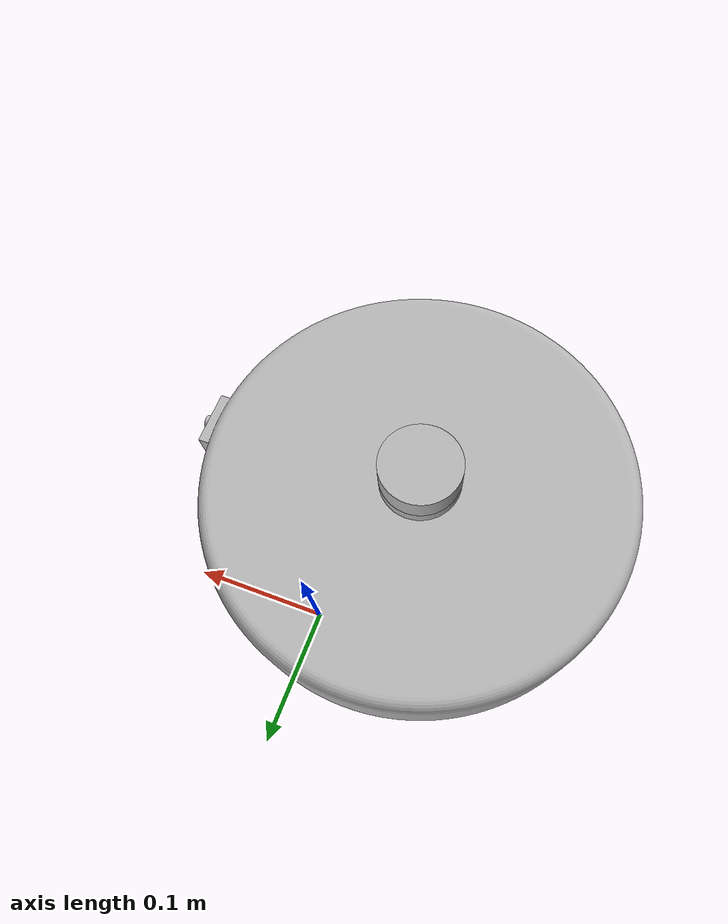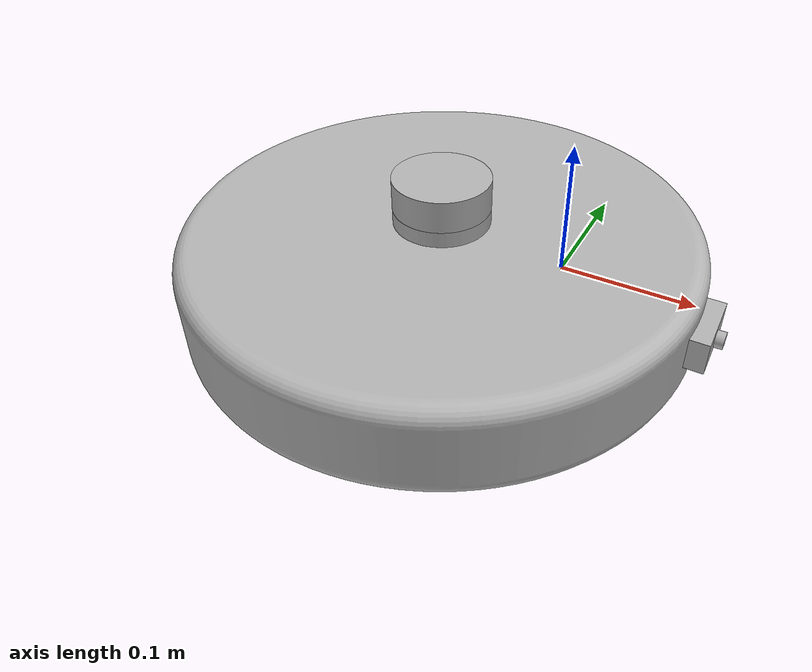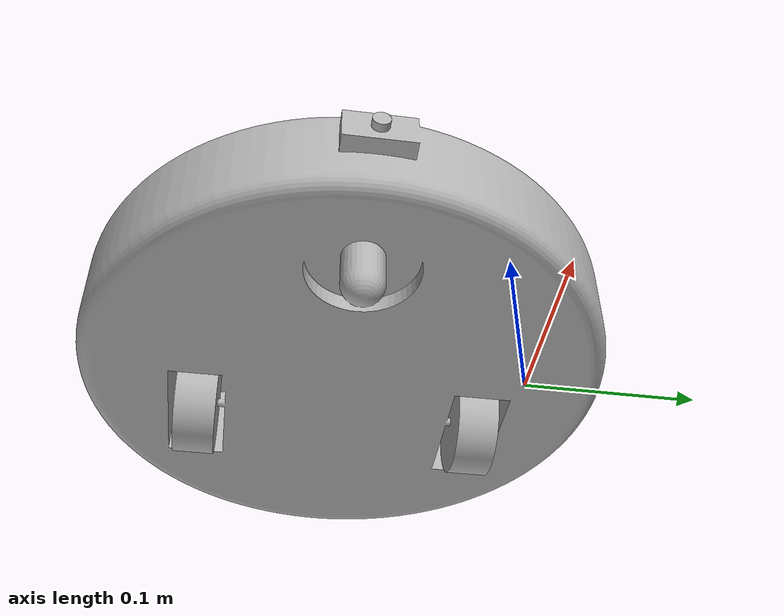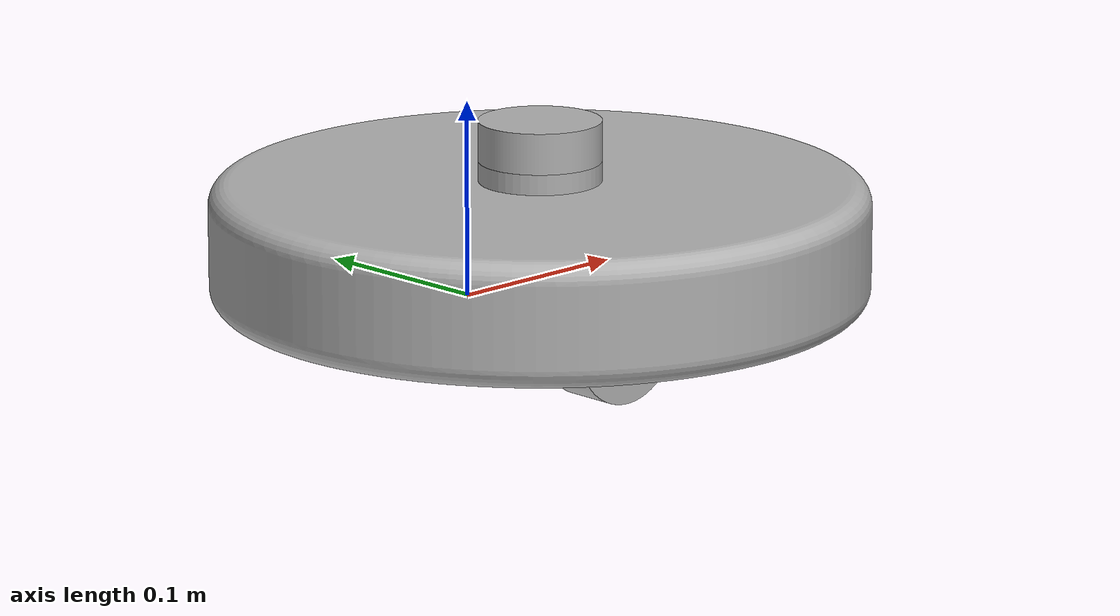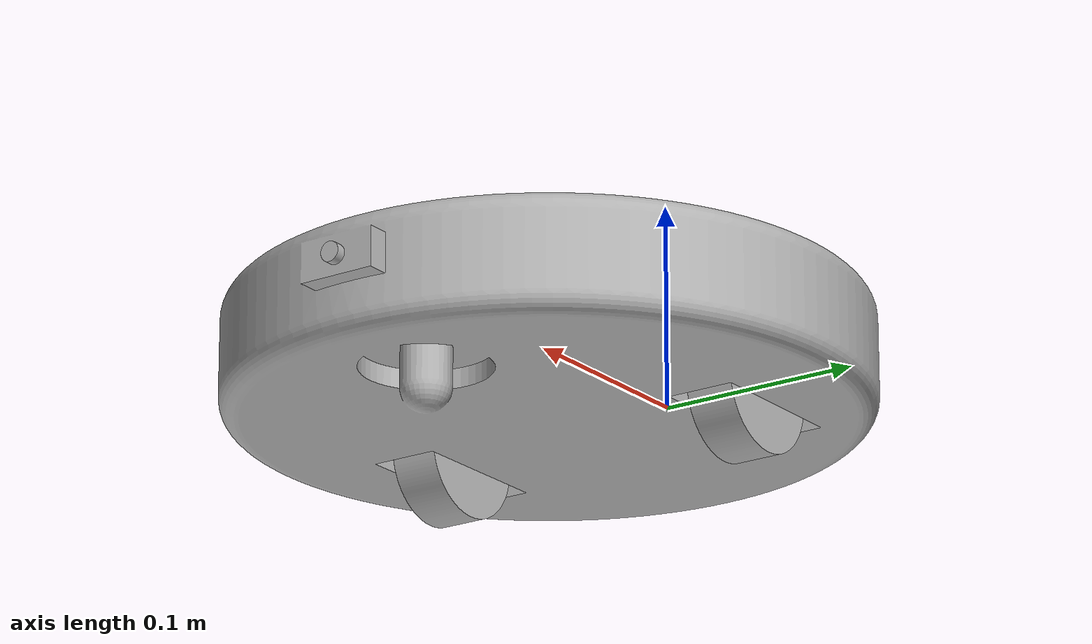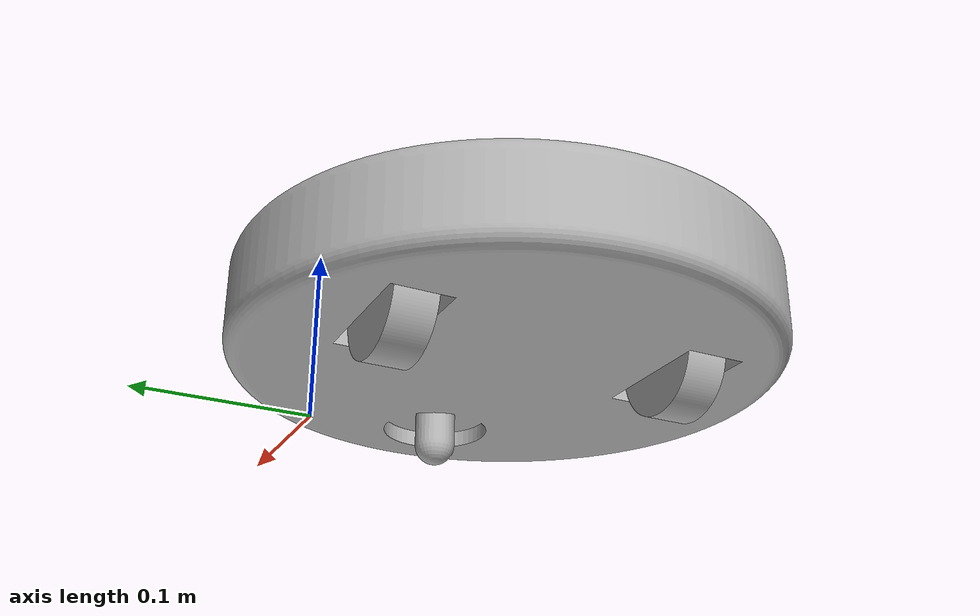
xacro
<?xml version="1.0" ?>
<robot name="cleaning_robot" xmlns:xacro="http://www.ros.org/wiki/xacro">

<xacro:include filename="$(find cleaning_robot_description)/urdf/materials.xacro" />
<xacro:include filename="$(find cleaning_robot_description)/urdf/cleaning_robot.trans" />
<xacro:include filename="$(find cleaning_robot_description)/urdf/cleaning_robot.gazebo" />
<link name="base_link">
  <inertial>
    <origin xyz="-0.04437838792509645 -0.1000005943178517 0.05601957260904838" rpy="0 0 0"/>
    <mass value="4.791754555008142"/>
    <inertia ixx="0.031334" iyy="0.033013" izz="0.061423" ixy="0.0" iyz="0.0" ixz="2.2e-05"/>
  </inertial>
  <visual>
    <origin xyz="0 0 0" rpy="0 0 0"/>
    <geometry>
      <mesh filename="package://cleaning_robot_description/meshes/base_link.stl" scale="0.001 0.001 0.001"/>
    </geometry>
    <material name="silver"/>
  </visual>
  <collision>
    <origin xyz="0 0 0" rpy="0 0 0"/>
    <geometry>
      <mesh filename="package://cleaning_robot_description/meshes/base_link.stl" scale="0.001 0.001 0.001"/>
    </geometry>
  </collision>
</link>

<link name="right_wheel_1">
  <inertial>
    <origin xyz="4.225560589210531e-07 -0.0124999999999999 4.412303293496733e-07" rpy="0 0 0"/>
    <mass value="0.07715064333823558"/>
    <inertia ixx="2.4e-05" iyy="4.1e-05" izz="2.4e-05" ixy="-0.0" iyz="0.0" ixz="0.0"/>
  </inertial>
  <visual>
    <origin xyz="0.086734 0.175 -0.035405" rpy="0 0 0"/>
    <geometry>
      <mesh filename="package://cleaning_robot_description/meshes/right_wheel_1.stl" scale="0.001 0.001 0.001"/>
    </geometry>
    <material name="silver"/>
  </visual>
  <collision>
    <origin xyz="0.086734 0.175 -0.035405" rpy="0 0 0"/>
    <geometry>
      <mesh filename="package://cleaning_robot_description/meshes/right_wheel_1.stl" scale="0.001 0.001 0.001"/>
    </geometry>
  </collision>
</link>

<link name="left_wheel_1">
  <inertial>
    <origin xyz="4.2255605858798617e-07 0.012499999999999041 4.412303297104958e-07" rpy="0 0 0"/>
    <mass value="0.07715064333823558"/>
    <inertia ixx="2.4e-05" iyy="4.1e-05" izz="2.4e-05" ixy="-0.0" iyz="0.0" ixz="0.0"/>
  </inertial>
  <visual>
    <origin xyz="0.086734 0.025 -0.035405" rpy="0 0 0"/>
    <geometry>
      <mesh filename="package://cleaning_robot_description/meshes/left_wheel_1.stl" scale="0.001 0.001 0.001"/>
    </geometry>
    <material name="silver"/>
  </visual>
  <collision>
    <origin xyz="0.086734 0.025 -0.035405" rpy="0 0 0"/>
    <geometry>
      <mesh filename="package://cleaning_robot_description/meshes/left_wheel_1.stl" scale="0.001 0.001 0.001"/>
    </geometry>
  </collision>
</link>

<link name="Camera_1">
  <inertial>
    <origin xyz="0.0025004225560568555 -3.785761643060326e-07 1.1586509461591898e-07" rpy="0 0 0"/>
    <mass value="0.0030826877913351157"/>
    <inertia ixx="0.0" iyy="0.0" izz="0.0" ixy="-0.0" iyz="0.0" ixz="-0.0"/>
  </inertial>
  <visual>
    <origin xyz="-0.123266 0.100296 -0.059968" rpy="0 0 0"/>
    <geometry>
      <mesh filename="package://cleaning_robot_description/meshes/Camera_1.stl" scale="0.001 0.001 0.001"/>
    </geometry>
    <material name="silver"/>
  </visual>
  <collision>
    <origin xyz="-0.123266 0.100296 -0.059968" rpy="0 0 0"/>
    <geometry>
      <mesh filename="package://cleaning_robot_description/meshes/Camera_1.stl" scale="0.001 0.001 0.001"/>
    </geometry>
  </collision>
</link>

<link name="lidar_1">
  <inertial>
    <origin xyz="4.2255606019087066e-07 -1.3877787807814457e-16 0.01000044123033178" rpy="0 0 0"/>
    <mass value="0.059941587830493234"/>
    <inertia ixx="1.5e-05" iyy="1.5e-05" izz="2.7e-05" ixy="0.0" iyz="-0.0" ixz="0.0"/>
  </inertial>
  <visual>
    <origin xyz="0.046734 0.1 -0.095405" rpy="0 0 0"/>
    <geometry>
      <mesh filename="package://cleaning_robot_description/meshes/lidar_1.stl" scale="0.001 0.001 0.001"/>
    </geometry>
    <material name="silver"/>
  </visual>
  <collision>
    <origin xyz="0.046734 0.1 -0.095405" rpy="0 0 0"/>
    <geometry>
      <mesh filename="package://cleaning_robot_description/meshes/lidar_1.stl" scale="0.001 0.001 0.001"/>
    </geometry>
  </collision>
</link>

<joint name="Revolute_1" type="continuous">
  <origin xyz="-0.086734 -0.175 0.035405" rpy="0 0 0"/>
  <parent link="base_link"/>
  <child link="right_wheel_1"/>
  <axis xyz="0.0 1.0 0.0"/>
</joint>

<joint name="Revolute_2" type="continuous">
  <origin xyz="-0.086734 -0.025 0.035405" rpy="0 0 0"/>
  <parent link="base_link"/>
  <child link="left_wheel_1"/>
  <axis xyz="0.0 1.0 0.0"/>
</joint>

<joint name="Rigid 7" type="fixed">
  <origin xyz="0.123266 -0.100296 0.059968" rpy="0 0 0"/>
  <parent link="base_link"/>
  <child link="Camera_1"/>
</joint>

<joint name="Rigid 8" type="fixed">
  <origin xyz="-0.046734 -0.1 0.095405" rpy="0 0 0"/>
  <parent link="base_link"/>
  <child link="lidar_1"/>
</joint>

</robot>

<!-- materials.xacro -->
<robot name="cleaning_robot" xmlns:xacro="http://www.ros.org/wiki/xacro" >

<material name="silver">
  <color rgba="0.700 0.700 0.700 1.000"/>
</material>

</robot>

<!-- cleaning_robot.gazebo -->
<robot name="cleaning_robot" xmlns:xacro="http://www.ros.org/wiki/xacro" >

<xacro:property name="body_color" value="Gazebo/Silver" />

<gazebo>
  <plugin name="control" filename="libgazebo_ros_control.so"/>
</gazebo>
<gazebo reference="base_link">
  <material>${body_color}</material>
  <mu1>0.2</mu1>
  <mu2>0.2</mu2>
  <selfCollide>true</selfCollide>
  <gravity>true</gravity>
</gazebo>

<gazebo reference="right_wheel_1">
  <material>${body_color}</material>
  <mu1>0.2</mu1>
  <mu2>0.2</mu2>
  <selfCollide>true</selfCollide>
</gazebo>

<gazebo reference="left_wheel_1">
  <material>${body_color}</material>
  <mu1>0.2</mu1>
  <mu2>0.2</mu2>
  <selfCollide>true</selfCollide>
</gazebo>

<gazebo reference="Camera_1">
  <material>${body_color}</material>
  <mu1>0.2</mu1>
  <mu2>0.2</mu2>
  <selfCollide>true</selfCollide>
</gazebo>

<gazebo reference="lidar_1">
  <material>${body_color}</material>
  <mu1>0.2</mu1>
  <mu2>0.2</mu2>
  <selfCollide>true</selfCollide>
</gazebo>
<gazebo>
  <plugin name="differential_drive_controller" filename="libgazebo_ros_diff_drive.so">

    <!-- Plugin update rate in Hz -->
    <updateRate>100</updateRate>

    <!-- Name of left joint, defaults to `left_joint` -->
    <leftJoint>Revolute_1</leftJoint>

    <!-- Name of right joint, defaults to `right_joint` -->
    <rightJoint>Revolute_2</rightJoint>

    <!-- The distance from the center of one wheel to the other, in meters, defaults to 0.34 m -->
    <wheelSeparation>0.150</wheelSeparation>

    <!-- Diameter of the wheels, in meters, defaults to 0.15 m -->
    <wheelDiameter>0.065</wheelDiameter>

    <!-- Wheel acceleration, in rad/s^2, defaults to 0.0 rad/s^2 -->
    <wheelAcceleration>1.0</wheelAcceleration>

    <!-- Maximum torque which the wheels can produce, in Nm, defaults to 5 Nm -->
    <wheelTorque>20</wheelTorque>

    <!-- Topic to receive geometry_msgs/Twist message commands, defaults to `cmd_vel` -->
    <commandTopic>cmd_vel</commandTopic>

    <!-- Topic to publish nav_msgs/Odometry messages, defaults to `odom` -->
    <odometryTopic>odom</odometryTopic>

    <!-- Odometry frame, defaults to `odom` -->
    <odometryFrame>odom</odometryFrame>

    <!-- Robot frame to calculate odometry from, defaults to `base_footprint` -->
    <robotBaseFrame>base_link</robotBaseFrame>

    <!-- Odometry source, 0 for ENCODER, 1 for WORLD, defaults to WORLD -->
    <odometrySource>1</odometrySource>

    <!-- Set to true to publish transforms for the wheel links, defaults to false -->
    <publishWheelTF>true</publishWheelTF>

    <!-- Set to true to publish transforms for the odometry, defaults to true -->
    <publishOdom>true</publishOdom>

    <!-- Set to true to publish sensor_msgs/JointState on /joint_states for the wheel joints, defaults to false -->
    <publishWheelJointState>true</publishWheelJointState>

    <!-- Set to true to swap right and left wheels, defaults to true -->
    <legacyMode>false</legacyMode>
  </plugin>
</gazebo>
<!-- hokuyo -->
<gazebo reference="lidar_1">
  <sensor type="ray" name="head_hokuyo_sensor">
    <pose>0 0 0 0 0 0</pose>
    <visualize>false</visualize>
    <update_rate>40</update_rate>
    <ray>
      <scan>
        <horizontal>
          <samples>720</samples>
          <resolution>1</resolution>
          <min_angle>-1.57</min_angle>
          <max_angle>1.57</max_angle>
        </horizontal>
      </scan>
      <range>
        <min>0.10</min>
        <max>10</max>
        <resolution>0.01</resolution>
      </range>
      <noise>
        <type>gaussian</type>
        <mean>0.0</mean>
        <stddev>0.01</stddev>
      </noise>
    </ray>
    <plugin name="gazebo_ros_head_hokuyo_controller" filename="libgazebo_ros_laser.so">
      <topicName>/scan</topicName>
      <frameName>lidar_1</frameName>
    </plugin>
  </sensor>
</gazebo>
  <!-- Define the camera -->
<gazebo reference="Camera_1">
  <material>${body_color}</material>
  <mu1>0.2</mu1>
  <mu2>0.2</mu2>
  <selfCollide>true</selfCollide>
  <sensor type="camera" name="head_camera_sensor">
    <visualize>false</visualize>
    <update_rate>30</update_rate>
    <camera>
      <horizontal_fov>1.5708</horizontal_fov> <!-- Approximately 60 degrees -->
      <image>
        <width>640</width>
        <height>480</height>
        <format>R8G8B8</format>
      </image>
      <clip>
        <near>0.01</near>
        <far>10.0</far>
      </clip>
    </camera>
    <plugin name="gazebo_ros_head_camera_controller" filename="libgazebo_ros_camera.so">
      <alwaysOn>true</alwaysOn>
      <updateRate>30.0</updateRate>
      <cameraName>Camera_1</cameraName>
      <imageTopicName>image_raw</imageTopicName>
      <cameraInfoTopicName>camera_info</cameraInfoTopicName>
      <frameName>Camera_1</frameName>
      <hackBaseline>0.07</hackBaseline>
    </plugin>
  </sensor>
</gazebo>
</robot>
